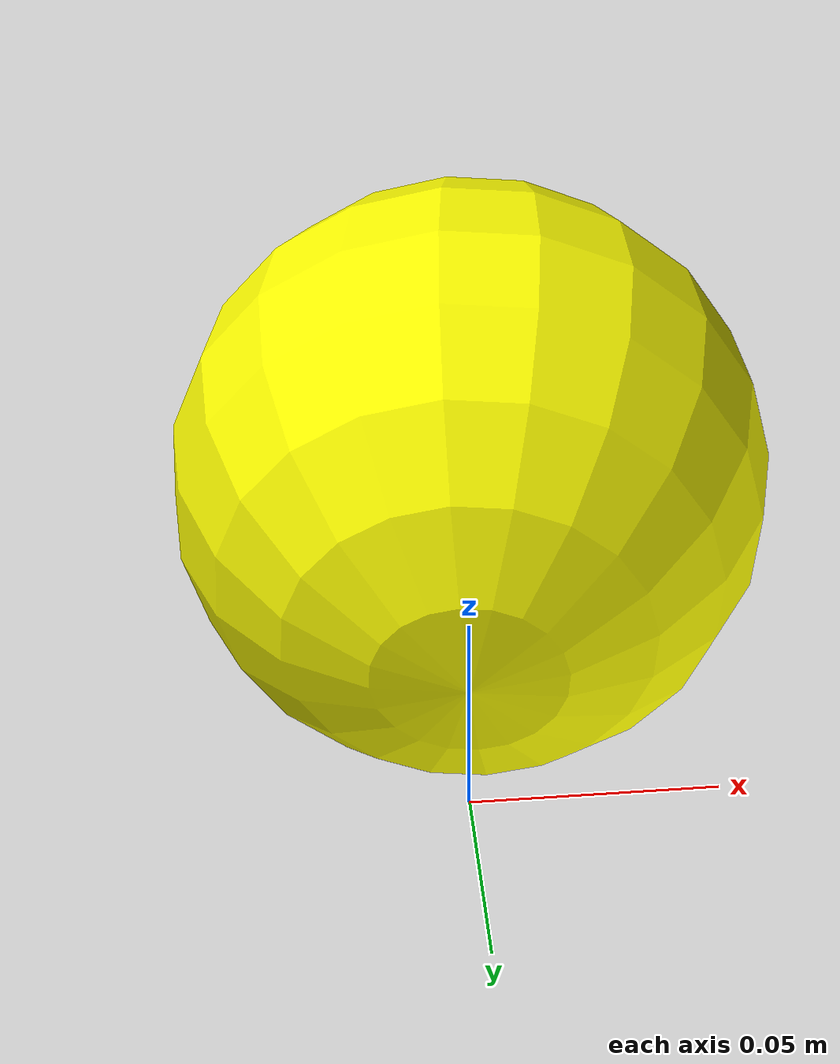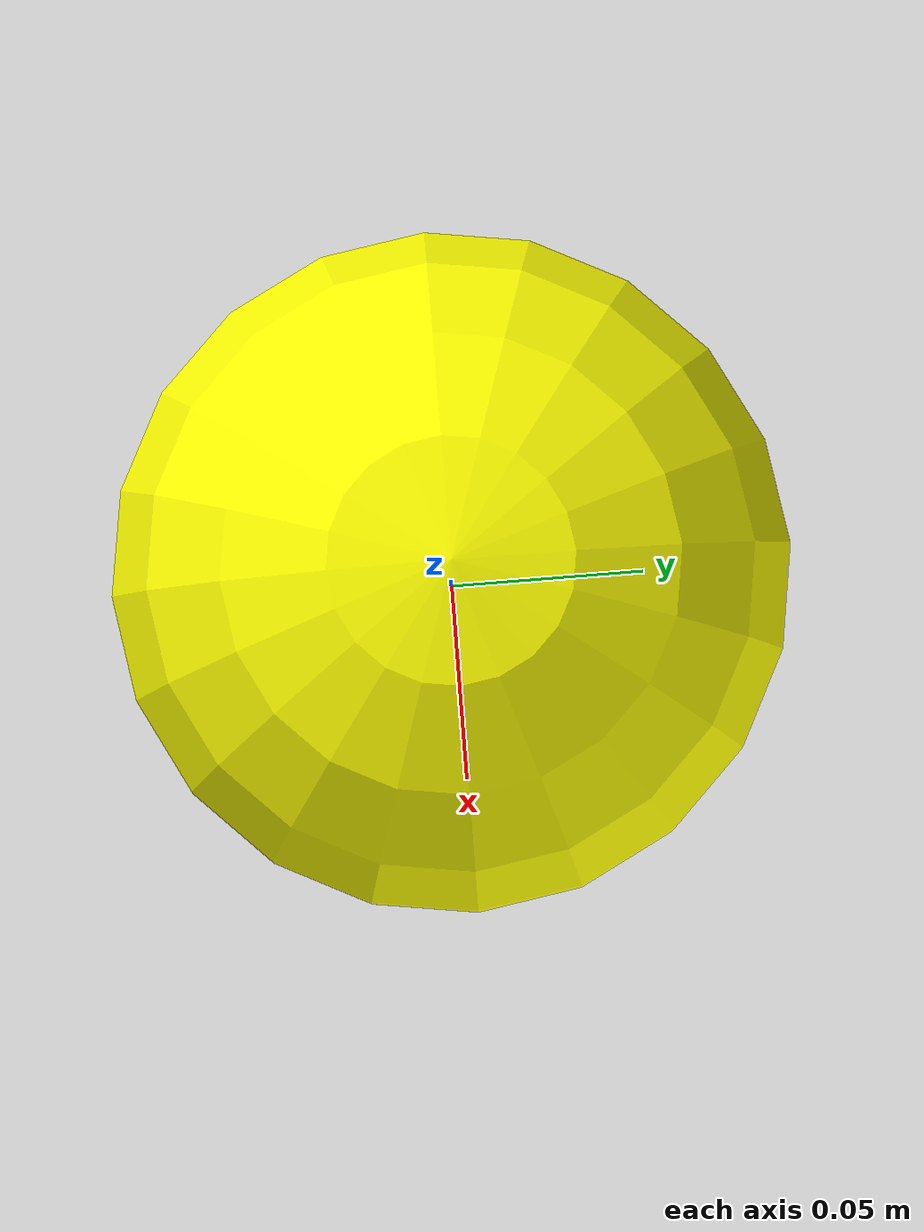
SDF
<?xml version='1.0'?>
<sdf version='1.4'>
  <model name="small_sphere">
    <link name="link" >
      <pose>0 0 0.1 0 0 0</pose>
      <inertial>
        <mass>0.1</mass>
        <inertia>
          <!-- http://answers.gazebosim.org/question/4372/the-inertia-matrix-explained/ -->
          <ixx>0.000225</ixx>    <!-- for a box: ixx = 0.4 * mass * r * r -->
          <ixy>0.0</ixy>         <!-- for a box: ixy = 0 -->
          <ixz>0.0</ixz>         <!-- for a box: ixz = 0 -->
          <iyy>0.000225</iyy>    <!-- for a box: iyy = 0.4 * mass * r * r -->
          <iyz>0.0</iyz>         <!-- for a box: iyz = 0 -->
          <izz>0.000225</izz>    <!-- for a box: izz = 0.4 * mass * r * r -->
        </inertia>
      </inertial>
      <collision name="collision">
        <geometry>
          <sphere>
            <radius>0.07</radius>
          </sphere>
        </geometry>
      </collision>
      <visual name="visual">
        <geometry>
          <sphere>
            <radius>0.07</radius>
          </sphere>
        </geometry>
        <material>
          <ambient>1.00 1.00 0.00 1</ambient> <!-- tomato -->
          <diffuse>1.00 1.00 0.00 1</diffuse>
          <specular>0.1 0.1 0.1 1</specular>
          <emissive>0 0 0 0</emissive>
        </material>
      </visual>
    </link>
  </model>
</sdf>
